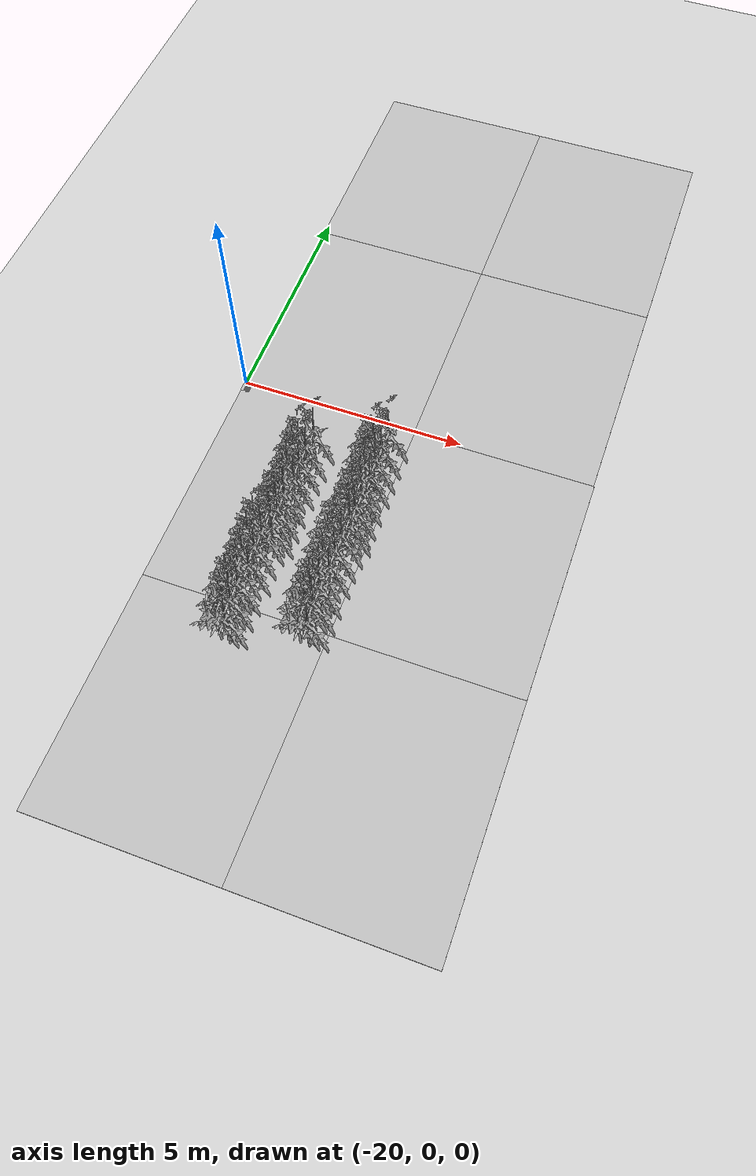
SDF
<sdf version="1.6">
 <world name="default">
  <model name="ground_plane">
   <static>1</static>
   <link name="link">
    <collision name="collision">
     <geometry><plane><normal>0 0 1</normal><size>100 100</size></plane></geometry>
     <surface>
      <contact><collide_bitmask>65535</collide_bitmask></contact>
      <friction><ode><mu>100</mu><mu2>50</mu2></ode></friction>
     </surface>
    </collision>
    <visual name="visual">
     <cast_shadows>0</cast_shadows>
     <geometry><plane><normal>0 0 1</normal><size>100 100</size></plane></geometry>
     <material>
      <script><uri>file://media/materials/scripts/gazebo.material</uri><name>Gazebo/Grey</name></script>
     </material>
    </visual>
   </link>
  </model>
  <model name="Middle_Plant_1">
   <model name="tomato_plant_big">
    <static>1</static>
    <link name="link">
     <collision name="collision">
      <geometry>
       <mesh><scale>5e-06 5e-06 6e-06</scale><uri>model://tomato_plant_big/meshes/tomato-plant.dae</uri></mesh>
      </geometry>
     </collision>
     <visual name="visual">
      <geometry>
       <mesh><scale>5e-06 5e-06 7e-06</scale><uri>model://tomato_plant_big/meshes/tomato-plant.dae</uri></mesh>
      </geometry>
     </visual>
    </link>
    <pose>0.085326 1.23023 0 0 -0 0</pose>
   </model>
   <model name="tomato_plant_big_0">
    <static>1</static>
    <link name="link">
     <collision name="collision">
      <geometry>
       <mesh><scale>5e-06 5e-06 6e-06</scale><uri>model://tomato_plant_big/meshes/tomato-plant.dae</uri></mesh>
      </geometry>
     </collision>
     <visual name="visual">
      <geometry>
       <mesh><scale>5e-06 5e-06 7e-06</scale><uri>model://tomato_plant_big/meshes/tomato-plant.dae</uri></mesh>
      </geometry>
     </visual>
    </link>
    <pose>-0.133881 0.970183 0 0 -0 0</pose>
   </model>
   <model name="tomato_plant_big_1">
    <static>1</static>
    <link name="link">
     <collision name="collision">
      <geometry>
       <mesh><scale>5e-06 5e-06 6e-06</scale><uri>model://tomato_plant_big/meshes/tomato-plant.dae</uri></mesh>
      </geometry>
     </collision>
     <visual name="visual">
      <geometry>
       <mesh><scale>5e-06 5e-06 7e-06</scale><uri>model://tomato_plant_big/meshes/tomato-plant.dae</uri></mesh>
      </geometry>
     </visual>
    </link>
    <pose>0.091162 0.792381 0 0 -0 0</pose>
   </model>
   <model name="tomato_plant_big_2">
    <static>1</static>
    <link name="link">
     <collision name="collision">
      <geometry>
       <mesh><scale>5e-06 5e-06 6e-06</scale><uri>model://tomato_plant_big/meshes/tomato-plant.dae</uri></mesh>
      </geometry>
     </collision>
     <visual name="visual">
      <geometry>
       <mesh><scale>5e-06 5e-06 7e-06</scale><uri>model://tomato_plant_big/meshes/tomato-plant.dae</uri></mesh>
      </geometry>
     </visual>
    </link>
    <pose>-0.099228 0.602587 0 0 -0 0</pose>
   </model>
   <model name="tomato_plant_big_3">
    <static>1</static>
    <link name="link">
     <collision name="collision">
      <geometry>
       <mesh><scale>5e-06 5e-06 6e-06</scale><uri>model://tomato_plant_big/meshes/tomato-plant.dae</uri></mesh>
      </geometry>
     </collision>
     <visual name="visual">
      <geometry>
       <mesh><scale>5e-06 5e-06 7e-06</scale><uri>model://tomato_plant_big/meshes/tomato-plant.dae</uri></mesh>
      </geometry>
     </visual>
    </link>
    <pose>0.083199 0.447645 0 0 -0 0</pose>
   </model>
   <model name="tomato_plant_big_4">
    <static>1</static>
    <link name="link">
     <collision name="collision">
      <geometry>
       <mesh><scale>5e-06 5e-06 6e-06</scale><uri>model://tomato_plant_big/meshes/tomato-plant.dae</uri></mesh>
      </geometry>
     </collision>
     <visual name="visual">
      <geometry>
       <mesh><scale>5e-06 5e-06 7e-06</scale><uri>model://tomato_plant_big/meshes/tomato-plant.dae</uri></mesh>
      </geometry>
     </visual>
    </link>
    <pose>-0.079499 0.263486 0 0 -0 0</pose>
   </model>
   <model name="tomato_plant_big_5">
    <static>1</static>
    <link name="link">
     <collision name="collision">
      <geometry>
       <mesh><scale>5e-06 5e-06 6e-06</scale><uri>model://tomato_plant_big/meshes/tomato-plant.dae</uri></mesh>
      </geometry>
     </collision>
     <visual name="visual">
      <geometry>
       <mesh><scale>5e-06 5e-06 7e-06</scale><uri>model://tomato_plant_big/meshes/tomato-plant.dae</uri></mesh>
      </geometry>
     </visual>
    </link>
    <pose>-0.033274 -0.040578 0 0 -0 0</pose>
   </model>
   <model name="tomato_plant_big_6">
    <static>1</static>
    <link name="link">
     <collision name="collision">
      <geometry>
       <mesh><scale>5e-06 5e-06 6e-06</scale><uri>model://tomato_plant_big/meshes/tomato-plant.dae</uri></mesh>
      </geometry>
     </collision>
     <visual name="visual">
      <geometry>
       <mesh><scale>5e-06 5e-06 7e-06</scale><uri>model://tomato_plant_big/meshes/tomato-plant.dae</uri></mesh>
      </geometry>
     </visual>
    </link>
    <pose>-0.07669 -0.382406 0 0 -0 0</pose>
   </model>
   <model name="tomato_plant_big_7">
    <static>1</static>
    <link name="link">
     <collision name="collision">
      <geometry>
       <mesh><scale>5e-06 5e-06 6e-06</scale><uri>model://tomato_plant_big/meshes/tomato-plant.dae</uri></mesh>
      </geometry>
     </collision>
     <visual name="visual">
      <geometry>
       <mesh><scale>5e-06 5e-06 7e-06</scale><uri>model://tomato_plant_big/meshes/tomato-plant.dae</uri></mesh>
      </geometry>
     </visual>
    </link>
    <pose>0.092388 -0.348189 0 0 -0 0</pose>
   </model>
   <model name="tomato_plant_big_8">
    <static>1</static>
    <link name="link">
     <collision name="collision">
      <geometry>
       <mesh><scale>5e-06 5e-06 6e-06</scale><uri>model://tomato_plant_big/meshes/tomato-plant.dae</uri></mesh>
      </geometry>
     </collision>
     <visual name="visual">
      <geometry>
       <mesh><scale>5e-06 5e-06 7e-06</scale><uri>model://tomato_plant_big/meshes/tomato-plant.dae</uri></mesh>
      </geometry>
     </visual>
    </link>
    <pose>0.099522 -0.697525 0 0 -0 0</pose>
   </model>
   <model name="tomato_plant_big_9">
    <static>1</static>
    <link name="link">
     <collision name="collision">
      <geometry>
       <mesh><scale>5e-06 5e-06 6e-06</scale><uri>model://tomato_plant_big/meshes/tomato-plant.dae</uri></mesh>
      </geometry>
     </collision>
     <visual name="visual">
      <geometry>
       <mesh><scale>5e-06 5e-06 7e-06</scale><uri>model://tomato_plant_big/meshes/tomato-plant.dae</uri></mesh>
      </geometry>
     </visual>
    </link>
    <pose>-0.050449 -0.712772 0 0 -0 0</pose>
   </model>
   <model name="tomato_plant_medium">
    <static>1</static>
    <link name="link">
     <collision name="collision">
      <geometry>
       <mesh><scale>5e-06 5e-06 6e-06</scale><uri>model://tomato_plant_medium/meshes/tomato-plant.dae</uri></mesh>
      </geometry>
     </collision>
     <visual name="visual">
      <geometry>
       <mesh><scale>5e-06 5e-06 6e-06</scale><uri>model://tomato_plant_medium/meshes/tomato-plant.dae</uri></mesh>
      </geometry>
     </visual>
    </link>
    <pose>0.078434 0.139842 0 0 -0 0</pose>
   </model>
   <model name="tomato_plant_medium_0">
    <static>1</static>
    <link name="link">
     <collision name="collision">
      <geometry>
       <mesh><scale>5e-06 5e-06 6e-06</scale><uri>model://tomato_plant_medium/meshes/tomato-plant.dae</uri></mesh>
      </geometry>
     </collision>
     <visual name="visual">
      <geometry>
       <mesh><scale>5e-06 5e-06 6e-06</scale><uri>model://tomato_plant_medium/meshes/tomato-plant.dae</uri></mesh>
      </geometry>
     </visual>
    </link>
    <pose>-0.079755 -0.244483 0 0 -0 0</pose>
   </model>
   <model name="tomato_plant_medium_1">
    <static>1</static>
    <link name="link">
     <collision name="collision">
      <geometry>
       <mesh><scale>5e-06 5e-06 6e-06</scale><uri>model://tomato_plant_medium/meshes/tomato-plant.dae</uri></mesh>
      </geometry>
     </collision>
     <visual name="visual">
      <geometry>
       <mesh><scale>5e-06 5e-06 6e-06</scale><uri>model://tomato_plant_medium/meshes/tomato-plant.dae</uri></mesh>
      </geometry>
     </visual>
    </link>
    <pose>0.106744 -1.01815 0 0 -0 0</pose>
   </model>
   <model name="tomato_plant_small">
    <static>1</static>
    <link name="link">
     <collision name="collision">
      <geometry>
       <mesh><scale>5e-06 5e-06 5e-06</scale><uri>model://tomato_plant_small/meshes/tomato-plant.dae</uri></mesh>
      </geometry>
     </collision>
     <visual name="visual">
      <geometry>
       <mesh><scale>5e-06 5e-06 5e-06</scale><uri>model://tomato_plant_small/meshes/tomato-plant.dae</uri></mesh>
      </geometry>
     </visual>
    </link>
    <pose>-0.083979 -1.00222 0 0 -0 0</pose>
   </model>
   <static>0</static>
   <pose>-17.8578 -4.83213 0 0 -0 0</pose>
  </model>
  <model name="Middle_Plant_2">
   <model name="tomato_plant_big">
    <static>1</static>
    <link name="link">
     <collision name="collision">
      <geometry>
       <mesh><scale>5e-06 5e-06 6e-06</scale><uri>model://tomato_plant_big/meshes/tomato-plant.dae</uri></mesh>
      </geometry>
     </collision>
     <visual name="visual">
      <geometry>
       <mesh><scale>5e-06 5e-06 7e-06</scale><uri>model://tomato_plant_big/meshes/tomato-plant.dae</uri></mesh>
      </geometry>
     </visual>
    </link>
    <pose>0.085326 1.23023 0 0 -0 0</pose>
   </model>
   <model name="tomato_plant_big_0">
    <static>1</static>
    <link name="link">
     <collision name="collision">
      <geometry>
       <mesh><scale>5e-06 5e-06 6e-06</scale><uri>model://tomato_plant_big/meshes/tomato-plant.dae</uri></mesh>
      </geometry>
     </collision>
     <visual name="visual">
      <geometry>
       <mesh><scale>5e-06 5e-06 7e-06</scale><uri>model://tomato_plant_big/meshes/tomato-plant.dae</uri></mesh>
      </geometry>
     </visual>
    </link>
    <pose>-0.133881 0.970183 0 0 -0 0</pose>
   </model>
   <model name="tomato_plant_big_1">
    <static>1</static>
    <link name="link">
     <collision name="collision">
      <geometry>
       <mesh><scale>5e-06 5e-06 6e-06</scale><uri>model://tomato_plant_big/meshes/tomato-plant.dae</uri></mesh>
      </geometry>
     </collision>
     <visual name="visual">
      <geometry>
       <mesh><scale>5e-06 5e-06 7e-06</scale><uri>model://tomato_plant_big/meshes/tomato-plant.dae</uri></mesh>
      </geometry>
     </visual>
    </link>
    <pose>0.091162 0.792381 0 0 -0 0</pose>
   </model>
   <model name="tomato_plant_big_2">
    <static>1</static>
    <link name="link">
     <collision name="collision">
      <geometry>
       <mesh><scale>5e-06 5e-06 6e-06</scale><uri>model://tomato_plant_big/meshes/tomato-plant.dae</uri></mesh>
      </geometry>
     </collision>
     <visual name="visual">
      <geometry>
       <mesh><scale>5e-06 5e-06 7e-06</scale><uri>model://tomato_plant_big/meshes/tomato-plant.dae</uri></mesh>
      </geometry>
     </visual>
    </link>
    <pose>-0.099228 0.602587 0 0 -0 0</pose>
   </model>
   <model name="tomato_plant_big_3">
    <static>1</static>
    <link name="link">
     <collision name="collision">
      <geometry>
       <mesh><scale>5e-06 5e-06 6e-06</scale><uri>model://tomato_plant_big/meshes/tomato-plant.dae</uri></mesh>
      </geometry>
     </collision>
     <visual name="visual">
      <geometry>
       <mesh><scale>5e-06 5e-06 7e-06</scale><uri>model://tomato_plant_big/meshes/tomato-plant.dae</uri></mesh>
      </geometry>
     </visual>
    </link>
    <pose>0.083199 0.447645 0 0 -0 0</pose>
   </model>
   <model name="tomato_plant_big_4">
    <static>1</static>
    <link name="link">
     <collision name="collision">
      <geometry>
       <mesh><scale>5e-06 5e-06 6e-06</scale><uri>model://tomato_plant_big/meshes/tomato-plant.dae</uri></mesh>
      </geometry>
     </collision>
     <visual name="visual">
      <geometry>
       <mesh><scale>5e-06 5e-06 7e-06</scale><uri>model://tomato_plant_big/meshes/tomato-plant.dae</uri></mesh>
      </geometry>
     </visual>
    </link>
    <pose>-0.079499 0.263486 0 0 -0 0</pose>
   </model>
   <model name="tomato_plant_big_5">
    <static>1</static>
    <link name="link">
     <collision name="collision">
      <geometry>
       <mesh><scale>5e-06 5e-06 6e-06</scale><uri>model://tomato_plant_big/meshes/tomato-plant.dae</uri></mesh>
      </geometry>
     </collision>
     <visual name="visual">
      <geometry>
       <mesh><scale>5e-06 5e-06 7e-06</scale><uri>model://tomato_plant_big/meshes/tomato-plant.dae</uri></mesh>
      </geometry>
     </visual>
    </link>
    <pose>-0.033274 -0.040578 0 0 -0 0</pose>
   </model>
   <model name="tomato_plant_big_6">
    <static>1</static>
    <link name="link">
     <collision name="collision">
      <geometry>
       <mesh><scale>5e-06 5e-06 6e-06</scale><uri>model://tomato_plant_big/meshes/tomato-plant.dae</uri></mesh>
      </geometry>
     </collision>
     <visual name="visual">
      <geometry>
       <mesh><scale>5e-06 5e-06 7e-06</scale><uri>model://tomato_plant_big/meshes/tomato-plant.dae</uri></mesh>
      </geometry>
     </visual>
    </link>
    <pose>-0.07669 -0.382406 0 0 -0 0</pose>
   </model>
   <model name="tomato_plant_big_7">
    <static>1</static>
    <link name="link">
     <collision name="collision">
      <geometry>
       <mesh><scale>5e-06 5e-06 6e-06</scale><uri>model://tomato_plant_big/meshes/tomato-plant.dae</uri></mesh>
      </geometry>
     </collision>
     <visual name="visual">
      <geometry>
       <mesh><scale>5e-06 5e-06 7e-06</scale><uri>model://tomato_plant_big/meshes/tomato-plant.dae</uri></mesh>
      </geometry>
     </visual>
    </link>
    <pose>0.092388 -0.348189 0 0 -0 0</pose>
   </model>
   <model name="tomato_plant_big_8">
    <static>1</static>
    <link name="link">
     <collision name="collision">
      <geometry>
       <mesh><scale>5e-06 5e-06 6e-06</scale><uri>model://tomato_plant_big/meshes/tomato-plant.dae</uri></mesh>
      </geometry>
     </collision>
     <visual name="visual">
      <geometry>
       <mesh><scale>5e-06 5e-06 7e-06</scale><uri>model://tomato_plant_big/meshes/tomato-plant.dae</uri></mesh>
      </geometry>
     </visual>
    </link>
    <pose>0.099522 -0.697525 0 0 -0 0</pose>
   </model>
   <model name="tomato_plant_big_9">
    <static>1</static>
    <link name="link">
     <collision name="collision">
      <geometry>
       <mesh><scale>5e-06 5e-06 6e-06</scale><uri>model://tomato_plant_big/meshes/tomato-plant.dae</uri></mesh>
      </geometry>
     </collision>
     <visual name="visual">
      <geometry>
       <mesh><scale>5e-06 5e-06 7e-06</scale><uri>model://tomato_plant_big/meshes/tomato-plant.dae</uri></mesh>
      </geometry>
     </visual>
    </link>
    <pose>-0.050449 -0.712772 0 0 -0 0</pose>
   </model>
   <model name="tomato_plant_medium">
    <static>1</static>
    <link name="link">
     <collision name="collision">
      <geometry>
       <mesh><scale>5e-06 5e-06 6e-06</scale><uri>model://tomato_plant_medium/meshes/tomato-plant.dae</uri></mesh>
      </geometry>
     </collision>
     <visual name="visual">
      <geometry>
       <mesh><scale>5e-06 5e-06 6e-06</scale><uri>model://tomato_plant_medium/meshes/tomato-plant.dae</uri></mesh>
      </geometry>
     </visual>
    </link>
    <pose>0.078434 0.139842 0 0 -0 0</pose>
   </model>
   <model name="tomato_plant_medium_0">
    <static>1</static>
    <link name="link">
     <collision name="collision">
      <geometry>
       <mesh><scale>5e-06 5e-06 6e-06</scale><uri>model://tomato_plant_medium/meshes/tomato-plant.dae</uri></mesh>
      </geometry>
     </collision>
     <visual name="visual">
      <geometry>
       <mesh><scale>5e-06 5e-06 6e-06</scale><uri>model://tomato_plant_medium/meshes/tomato-plant.dae</uri></mesh>
      </geometry>
     </visual>
    </link>
    <pose>-0.079755 -0.244483 0 0 -0 0</pose>
   </model>
   <model name="tomato_plant_medium_1">
    <static>1</static>
    <link name="link">
     <collision name="collision">
      <geometry>
       <mesh><scale>5e-06 5e-06 6e-06</scale><uri>model://tomato_plant_medium/meshes/tomato-plant.dae</uri></mesh>
      </geometry>
     </collision>
     <visual name="visual">
      <geometry>
       <mesh><scale>5e-06 5e-06 6e-06</scale><uri>model://tomato_plant_medium/meshes/tomato-plant.dae</uri></mesh>
      </geometry>
     </visual>
    </link>
    <pose>0.106744 -1.01815 0 0 -0 0</pose>
   </model>
   <model name="tomato_plant_small">
    <static>1</static>
    <link name="link">
     <collision name="collision">
      <geometry>
       <mesh><scale>5e-06 5e-06 5e-06</scale><uri>model://tomato_plant_small/meshes/tomato-plant.dae</uri></mesh>
      </geometry>
     </collision>
     <visual name="visual">
      <geometry>
       <mesh><scale>5e-06 5e-06 5e-06</scale><uri>model://tomato_plant_small/meshes/tomato-plant.dae</uri></mesh>
      </geometry>
     </visual>
    </link>
    <pose>-0.083979 -1.00222 0 0 -0 0</pose>
   </model>
   <static>0</static>
   <pose>-17.7846 -2.78008 0 0 -0 0</pose>
  </model>
  <model name="Middle_Plant_14">
   <model name="tomato_plant_big">
    <static>1</static>
    <link name="link">
     <collision name="collision">
      <geometry>
       <mesh><scale>5e-06 5e-06 6e-06</scale><uri>model://tomato_plant_big/meshes/tomato-plant.dae</uri></mesh>
      </geometry>
     </collision>
     <visual name="visual">
      <geometry>
       <mesh><scale>5e-06 5e-06 7e-06</scale><uri>model://tomato_plant_big/meshes/tomato-plant.dae</uri></mesh>
      </geometry>
     </visual>
    </link>
    <pose>0.085326 1.23023 0 0 -0 0</pose>
   </model>
   <model name="tomato_plant_big_0">
    <static>1</static>
    <link name="link">
     <collision name="collision">
      <geometry>
       <mesh><scale>5e-06 5e-06 6e-06</scale><uri>model://tomato_plant_big/meshes/tomato-plant.dae</uri></mesh>
      </geometry>
     </collision>
     <visual name="visual">
      <geometry>
       <mesh><scale>5e-06 5e-06 7e-06</scale><uri>model://tomato_plant_big/meshes/tomato-plant.dae</uri></mesh>
      </geometry>
     </visual>
    </link>
    <pose>-0.133881 0.970183 0 0 -0 0</pose>
   </model>
   <model name="tomato_plant_big_1">
    <static>1</static>
    <link name="link">
     <collision name="collision">
      <geometry>
       <mesh><scale>5e-06 5e-06 6e-06</scale><uri>model://tomato_plant_big/meshes/tomato-plant.dae</uri></mesh>
      </geometry>
     </collision>
     <visual name="visual">
      <geometry>
       <mesh><scale>5e-06 5e-06 7e-06</scale><uri>model://tomato_plant_big/meshes/tomato-plant.dae</uri></mesh>
      </geometry>
     </visual>
    </link>
    <pose>0.091162 0.792381 0 0 -0 0</pose>
   </model>
   <model name="tomato_plant_big_2">
    <static>1</static>
    <link name="link">
     <collision name="collision">
      <geometry>
       <mesh><scale>5e-06 5e-06 6e-06</scale><uri>model://tomato_plant_big/meshes/tomato-plant.dae</uri></mesh>
      </geometry>
     </collision>
     <visual name="visual">
      <geometry>
       <mesh><scale>5e-06 5e-06 7e-06</scale><uri>model://tomato_plant_big/meshes/tomato-plant.dae</uri></mesh>
      </geometry>
     </visual>
    </link>
    <pose>-0.099228 0.602587 0 0 -0 0</pose>
   </model>
   <model name="tomato_plant_big_3">
    <static>1</static>
    <link name="link">
     <collision name="collision">
      <geometry>
       <mesh><scale>5e-06 5e-06 6e-06</scale><uri>model://tomato_plant_big/meshes/tomato-plant.dae</uri></mesh>
      </geometry>
     </collision>
     <visual name="visual">
      <geometry>
       <mesh><scale>5e-06 5e-06 7e-06</scale><uri>model://tomato_plant_big/meshes/tomato-plant.dae</uri></mesh>
      </geometry>
     </visual>
    </link>
    <pose>0.083199 0.447645 0 0 -0 0</pose>
   </model>
   <model name="tomato_plant_big_4">
    <static>1</static>
    <link name="link">
     <collision name="collision">
      <geometry>
       <mesh><scale>5e-06 5e-06 6e-06</scale><uri>model://tomato_plant_big/meshes/tomato-plant.dae</uri></mesh>
      </geometry>
     </collision>
     <visual name="visual">
      <geometry>
       <mesh><scale>5e-06 5e-06 7e-06</scale><uri>model://tomato_plant_big/meshes/tomato-plant.dae</uri></mesh>
      </geometry>
     </visual>
    </link>
    <pose>-0.079499 0.263486 0 0 -0 0</pose>
   </model>
   <model name="tomato_plant_big_5">
    <static>1</static>
    <link name="link">
     <collision name="collision">
      <geometry>
       <mesh><scale>5e-06 5e-06 6e-06</scale><uri>model://tomato_plant_big/meshes/tomato-plant.dae</uri></mesh>
      </geometry>
     </collision>
     <visual name="visual">
      <geometry>
       <mesh><scale>5e-06 5e-06 7e-06</scale><uri>model://tomato_plant_big/meshes/tomato-plant.dae</uri></mesh>
      </geometry>
     </visual>
    </link>
    <pose>-0.033274 -0.040578 0 0 -0 0</pose>
   </model>
   <model name="tomato_plant_big_6">
    <static>1</static>
    <link name="link">
     <collision name="collision">
      <geometry>
       <mesh><scale>5e-06 5e-06 6e-06</scale><uri>model://tomato_plant_big/meshes/tomato-plant.dae</uri></mesh>
      </geometry>
     </collision>
     <visual name="visual">
      <geometry>
       <mesh><scale>5e-06 5e-06 7e-06</scale><uri>model://tomato_plant_big/meshes/tomato-plant.dae</uri></mesh>
      </geometry>
     </visual>
    </link>
    <pose>-0.07669 -0.382406 0 0 -0 0</pose>
   </model>
   <model name="tomato_plant_big_7">
    <static>1</static>
    <link name="link">
     <collision name="collision">
      <geometry>
       <mesh><scale>5e-06 5e-06 6e-06</scale><uri>model://tomato_plant_big/meshes/tomato-plant.dae</uri></mesh>
      </geometry>
     </collision>
     <visual name="visual">
      <geometry>
       <mesh><scale>5e-06 5e-06 7e-06</scale><uri>model://tomato_plant_big/meshes/tomato-plant.dae</uri></mesh>
      </geometry>
     </visual>
    </link>
    <pose>0.092388 -0.348189 0 0 -0 0</pose>
   </model>
   <model name="tomato_plant_big_8">
    <static>1</static>
    <link name="link">
     <collision name="collision">
      <geometry>
       <mesh><scale>5e-06 5e-06 6e-06</scale><uri>model://tomato_plant_big/meshes/tomato-plant.dae</uri></mesh>
      </geometry>
     </collision>
     <visual name="visual">
      <geometry>
       <mesh><scale>5e-06 5e-06 7e-06</scale><uri>model://tomato_plant_big/meshes/tomato-plant.dae</uri></mesh>
      </geometry>
     </visual>
    </link>
    <pose>0.099522 -0.697525 0 0 -0 0</pose>
   </model>
   <model name="tomato_plant_big_9">
    <static>1</static>
    <link name="link">
     <collision name="collision">
      <geometry>
       <mesh><scale>5e-06 5e-06 6e-06</scale><uri>model://tomato_plant_big/meshes/tomato-plant.dae</uri></mesh>
      </geometry>
     </collision>
     <visual name="visual">
      <geometry>
       <mesh><scale>5e-06 5e-06 7e-06</scale><uri>model://tomato_plant_big/meshes/tomato-plant.dae</uri></mesh>
      </geometry>
     </visual>
    </link>
    <pose>-0.050449 -0.712772 0 0 -0 0</pose>
   </model>
   <model name="tomato_plant_medium">
    <static>1</static>
    <link name="link">
     <collision name="collision">
      <geometry>
       <mesh><scale>5e-06 5e-06 6e-06</scale><uri>model://tomato_plant_medium/meshes/tomato-plant.dae</uri></mesh>
      </geometry>
     </collision>
     <visual name="visual">
      <geometry>
       <mesh><scale>5e-06 5e-06 6e-06</scale><uri>model://tomato_plant_medium/meshes/tomato-plant.dae</uri></mesh>
      </geometry>
     </visual>
    </link>
    <pose>0.078434 0.139842 0 0 -0 0</pose>
   </model>
   <model name="tomato_plant_medium_0">
    <static>1</static>
    <link name="link">
     <collision name="collision">
      <geometry>
       <mesh><scale>5e-06 5e-06 6e-06</scale><uri>model://tomato_plant_medium/meshes/tomato-plant.dae</uri></mesh>
      </geometry>
     </collision>
     <visual name="visual">
      <geometry>
       <mesh><scale>5e-06 5e-06 6e-06</scale><uri>model://tomato_plant_medium/meshes/tomato-plant.dae</uri></mesh>
      </geometry>
     </visual>
    </link>
    <pose>-0.079755 -0.244483 0 0 -0 0</pose>
   </model>
   <model name="tomato_plant_medium_1">
    <static>1</static>
    <link name="link">
     <collision name="collision">
      <geometry>
       <mesh><scale>5e-06 5e-06 6e-06</scale><uri>model://tomato_plant_medium/meshes/tomato-plant.dae</uri></mesh>
      </geometry>
     </collision>
     <visual name="visual">
      <geometry>
       <mesh><scale>5e-06 5e-06 6e-06</scale><uri>model://tomato_plant_medium/meshes/tomato-plant.dae</uri></mesh>
      </geometry>
     </visual>
    </link>
    <pose>0.106744 -1.01815 0 0 -0 0</pose>
   </model>
   <model name="tomato_plant_small">
    <static>1</static>
    <link name="link">
     <collision name="collision">
      <geometry>
       <mesh><scale>5e-06 5e-06 5e-06</scale><uri>model://tomato_plant_small/meshes/tomato-plant.dae</uri></mesh>
      </geometry>
     </collision>
     <visual name="visual">
      <geometry>
       <mesh><scale>5e-06 5e-06 5e-06</scale><uri>model://tomato_plant_small/meshes/tomato-plant.dae</uri></mesh>
      </geometry>
     </visual>
    </link>
    <pose>-0.083979 -1.00222 0 0 -0 0</pose>
   </model>
   <static>0</static>
   <pose>-16.3902 -4.38628 0 0 -0 0</pose>
  </model>
  <model name="Middle_Plant_19">
   <model name="tomato_plant_big">
    <static>1</static>
    <link name="link">
     <collision name="collision">
      <geometry>
       <mesh><scale>5e-06 5e-06 6e-06</scale><uri>model://tomato_plant_big/meshes/tomato-plant.dae</uri></mesh>
      </geometry>
     </collision>
     <visual name="visual">
      <geometry>
       <mesh><scale>5e-06 5e-06 7e-06</scale><uri>model://tomato_plant_big/meshes/tomato-plant.dae</uri></mesh>
      </geometry>
     </visual>
    </link>
    <pose>0.085326 1.23023 0 0 -0 0</pose>
   </model>
   <model name="tomato_plant_big_0">
    <static>1</static>
    <link name="link">
     <collision name="collision">
      <geometry>
       <mesh><scale>5e-06 5e-06 6e-06</scale><uri>model://tomato_plant_big/meshes/tomato-plant.dae</uri></mesh>
      </geometry>
     </collision>
     <visual name="visual">
      <geometry>
       <mesh><scale>5e-06 5e-06 7e-06</scale><uri>model://tomato_plant_big/meshes/tomato-plant.dae</uri></mesh>
      </geometry>
     </visual>
    </link>
    <pose>-0.133881 0.970183 0 0 -0 0</pose>
   </model>
   <model name="tomato_plant_big_1">
    <static>1</static>
    <link name="link">
     <collision name="collision">
      <geometry>
       <mesh><scale>5e-06 5e-06 6e-06</scale><uri>model://tomato_plant_big/meshes/tomato-plant.dae</uri></mesh>
      </geometry>
     </collision>
     <visual name="visual">
      <geometry>
       <mesh><scale>5e-06 5e-06 7e-06</scale><uri>model://tomato_plant_big/meshes/tomato-plant.dae</uri></mesh>
      </geometry>
     </visual>
    </link>
    <pose>0.091162 0.792381 0 0 -0 0</pose>
   </model>
   <model name="tomato_plant_big_2">
    <static>1</static>
    <link name="link">
     <collision name="collision">
      <geometry>
       <mesh><scale>5e-06 5e-06 6e-06</scale><uri>model://tomato_plant_big/meshes/tomato-plant.dae</uri></mesh>
      </geometry>
     </collision>
     <visual name="visual">
      <geometry>
       <mesh><scale>5e-06 5e-06 7e-06</scale><uri>model://tomato_plant_big/meshes/tomato-plant.dae</uri></mesh>
      </geometry>
     </visual>
    </link>
    <pose>-0.099228 0.602587 0 0 -0 0</pose>
   </model>
   <model name="tomato_plant_big_3">
    <static>1</static>
    <link name="link">
     <collision name="collision">
      <geometry>
       <mesh><scale>5e-06 5e-06 6e-06</scale><uri>model://tomato_plant_big/meshes/tomato-plant.dae</uri></mesh>
      </geometry>
     </collision>
     <visual name="visual">
      <geometry>
       <mesh><scale>5e-06 5e-06 7e-06</scale><uri>model://tomato_plant_big/meshes/tomato-plant.dae</uri></mesh>
      </geometry>
     </visual>
    </link>
    <pose>0.083199 0.447645 0 0 -0 0</pose>
   </model>
   <model name="tomato_plant_big_4">
    <static>1</static>
    <link name="link">
     <collision name="collision">
      <geometry>
       <mesh><scale>5e-06 5e-06 6e-06</scale><uri>model://tomato_plant_big/meshes/tomato-plant.dae</uri></mesh>
      </geometry>
     </collision>
     <visual name="visual">
      <geometry>
       <mesh><scale>5e-06 5e-06 7e-06</scale><uri>model://tomato_plant_big/meshes/tomato-plant.dae</uri></mesh>
      </geometry>
     </visual>
    </link>
    <pose>-0.079499 0.263486 0 0 -0 0</pose>
   </model>
   <model name="tomato_plant_big_5">
    <static>1</static>
    <link name="link">
     <collision name="collision">
      <geometry>
       <mesh><scale>5e-06 5e-06 6e-06</scale><uri>model://tomato_plant_big/meshes/tomato-plant.dae</uri></mesh>
      </geometry>
     </collision>
     <visual name="visual">
      <geometry>
       <mesh><scale>5e-06 5e-06 7e-06</scale><uri>model://tomato_plant_big/meshes/tomato-plant.dae</uri></mesh>
      </geometry>
     </visual>
    </link>
    <pose>-0.033274 -0.040578 0 0 -0 0</pose>
   </model>
   <model name="tomato_plant_big_6">
    <static>1</static>
    <link name="link">
     <collision name="collision">
      <geometry>
       <mesh><scale>5e-06 5e-06 6e-06</scale><uri>model://tomato_plant_big/meshes/tomato-plant.dae</uri></mesh>
      </geometry>
     </collision>
     <visual name="visual">
      <geometry>
       <mesh><scale>5e-06 5e-06 7e-06</scale><uri>model://tomato_plant_big/meshes/tomato-plant.dae</uri></mesh>
      </geometry>
     </visual>
    </link>
    <pose>-0.07669 -0.382406 0 0 -0 0</pose>
   </model>
   <model name="tomato_plant_big_7">
    <static>1</static>
    <link name="link">
     <collision name="collision">
      <geometry>
       <mesh><scale>5e-06 5e-06 6e-06</scale><uri>model://tomato_plant_big/meshes/tomato-plant.dae</uri></mesh>
      </geometry>
     </collision>
     <visual name="visual">
      <geometry>
       <mesh><scale>5e-06 5e-06 7e-06</scale><uri>model://tomato_plant_big/meshes/tomato-plant.dae</uri></mesh>
      </geometry>
     </visual>
    </link>
    <pose>0.092388 -0.348189 0 0 -0 0</pose>
   </model>
   <model name="tomato_plant_big_8">
    <static>1</static>
    <link name="link">
     <collision name="collision">
      <geometry>
       <mesh><scale>5e-06 5e-06 6e-06</scale><uri>model://tomato_plant_big/meshes/tomato-plant.dae</uri></mesh>
      </geometry>
     </collision>
     <visual name="visual">
      <geometry>
       <mesh><scale>5e-06 5e-06 7e-06</scale><uri>model://tomato_plant_big/meshes/tomato-plant.dae</uri></mesh>
      </geometry>
     </visual>
    </link>
    <pose>0.099522 -0.697525 0 0 -0 0</pose>
   </model>
   <model name="tomato_plant_big_9">
    <static>1</static>
    <link name="link">
     <collision name="collision">
      <geometry>
       <mesh><scale>5e-06 5e-06 6e-06</scale><uri>model://tomato_plant_big/meshes/tomato-plant.dae</uri></mesh>
      </geometry>
     </collision>
     <visual name="visual">
      <geometry>
       <mesh><scale>5e-06 5e-06 7e-06</scale><uri>model://tomato_plant_big/meshes/tomato-plant.dae</uri></mesh>
      </geometry>
     </visual>
    </link>
    <pose>-0.050449 -0.712772 0 0 -0 0</pose>
   </model>
   <model name="tomato_plant_medium">
    <static>1</static>
    <link name="link">
     <collision name="collision">
      <geometry>
       <mesh><scale>5e-06 5e-06 6e-06</scale><uri>model://tomato_plant_medium/meshes/tomato-plant.dae</uri></mesh>
      </geometry>
     </collision>
     <visual name="visual">
      <geometry>
       <mesh><scale>5e-06 5e-06 6e-06</scale><uri>model://tomato_plant_medium/meshes/tomato-plant.dae</uri></mesh>
      </geometry>
     </visual>
    </link>
    <pose>0.078434 0.139842 0 0 -0 0</pose>
   </model>
   <model name="tomato_plant_medium_0">
    <static>1</static>
    <link name="link">
     <collision name="collision">
      <geometry>
       <mesh><scale>5e-06 5e-06 6e-06</scale><uri>model://tomato_plant_medium/meshes/tomato-plant.dae</uri></mesh>
      </geometry>
     </collision>
     <visual name="visual">
      <geometry>
       <mesh><scale>5e-06 5e-06 6e-06</scale><uri>model://tomato_plant_medium/meshes/tomato-plant.dae</uri></mesh>
      </geometry>
     </visual>
    </link>
    <pose>-0.079755 -0.244483 0 0 -0 0</pose>
   </model>
   <model name="tomato_plant_medium_1">
    <static>1</static>
    <link name="link">
     <collision name="collision">
      <geometry>
       <mesh><scale>5e-06 5e-06 6e-06</scale><uri>model://tomato_plant_medium/meshes/tomato-plant.dae</uri></mesh>
      </geometry>
     </collision>
     <visual name="visual">
      <geometry>
       <mesh><scale>5e-06 5e-06 6e-06</scale><uri>model://tomato_plant_medium/meshes/tomato-plant.dae</uri></mesh>
      </geometry>
     </visual>
    </link>
    <pose>0.106744 -1.01815 0 0 -0 0</pose>
   </model>
   <model name="tomato_plant_small">
    <static>1</static>
    <link name="link">
     <collision name="collision">
      <geometry>
       <mesh><scale>5e-06 5e-06 5e-06</scale><uri>model://tomato_plant_small/meshes/tomato-plant.dae</uri></mesh>
      </geometry>
     </collision>
     <visual name="visual">
      <geometry>
       <mesh><scale>5e-06 5e-06 5e-06</scale><uri>model://tomato_plant_small/meshes/tomato-plant.dae</uri></mesh>
      </geometry>
     </visual>
    </link>
    <pose>-0.083979 -1.00222 0 0 -0 0</pose>
   </model>
   <static>0</static>
   <pose>-16.3722 -2.23599 0 0 -0 0</pose>
  </model>
  <model name="mud_box_4_clone">
   <static>1</static>
   <link name="link">
    <collision name="collision"><geometry><box><size>8 10 0.02</size></box></geometry></collision>
    <visual name="visual_1">
     <pose>-2 2.5 0 0 -0 0</pose>
     <cast_shadows>0</cast_shadows>
     <geometry><box><size>4 5 0.02</size></box></geometry>
     <material>
      <script>
       <uri>model://mud_box/materials/scripts</uri>
       <uri>model://mud_box/materials/textures</uri>
       <name>vrc/mud</name>
      </script>
     </material>
    </visual>
    <visual name="visual_2">
     <pose>2 2.5 0 0 -0 0</pose>
     <cast_shadows>0</cast_shadows>
     <geometry><box><size>4 5 0.02</size></box></geometry>
     <material>
      <script>
       <uri>model://mud_box/materials/scripts</uri>
       <uri>model://mud_box/materials/textures</uri>
       <name>vrc/mud</name>
      </script>
     </material>
    </visual>
    <visual name="visual_3">
     <pose>2 -2.5 0 0 -0 0</pose>
     <cast_shadows>0</cast_shadows>
     <geometry><box><size>4 5 0.02</size></box></geometry>
     <material>
      <script>
       <uri>model://mud_box/materials/scripts</uri>
       <uri>model://mud_box/materials/textures</uri>
       <name>vrc/mud</name>
      </script>
     </material>
    </visual>
    <visual name="visual_4">
     <pose>-2 -2.5 0 0 -0 0</pose>
     <cast_shadows>0</cast_shadows>
     <geometry><box><size>4 5 0.02</size></box></geometry>
     <material>
      <script>
       <uri>model://mud_box/materials/scripts</uri>
       <uri>model://mud_box/materials/textures</uri>
       <name>vrc/mud</name>
      </script>
     </material>
    </visual>
   </link>
   <pose>-16.0278 -5.06387 0 0 -0 0</pose>
  </model>
  <model name="mud_box">
   <static>1</static>
   <link name="link">
    <collision name="collision"><geometry><box><size>8 10 0.02</size></box></geometry></collision>
    <visual name="visual_1">
     <pose>-2 2.5 0 0 -0 0</pose>
     <cast_shadows>0</cast_shadows>
     <geometry><box><size>4 5 0.02</size></box></geometry>
     <material>
      <script>
       <uri>model://mud_box/materials/scripts</uri>
       <uri>model://mud_box/materials/textures</uri>
       <name>vrc/mud</name>
      </script>
     </material>
    </visual>
    <visual name="visual_2">
     <pose>2 2.5 0 0 -0 0</pose>
     <cast_shadows>0</cast_shadows>
     <geometry><box><size>4 5 0.02</size></box></geometry>
     <material>
      <script>
       <uri>model://mud_box/materials/scripts</uri>
       <uri>model://mud_box/materials/textures</uri>
       <name>vrc/mud</name>
      </script>
     </material>
    </visual>
    <visual name="visual_3">
     <pose>2 -2.5 0 0 -0 0</pose>
     <cast_shadows>0</cast_shadows>
     <geometry><box><size>4 5 0.02</size></box></geometry>
     <material>
      <script>
       <uri>model://mud_box/materials/scripts</uri>
       <uri>model://mud_box/materials/textures</uri>
       <name>vrc/mud</name>
      </script>
     </material>
    </visual>
    <visual name="visual_4">
     <pose>-2 -2.5 0 0 -0 0</pose>
     <cast_shadows>0</cast_shadows>
     <geometry><box><size>4 5 0.02</size></box></geometry>
     <material>
      <script>
       <uri>model://mud_box/materials/scripts</uri>
       <uri>model://mud_box/materials/textures</uri>
       <name>vrc/mud</name>
      </script>
     </material>
    </visual>
   </link>
   <pose>-16.0443 4.76987 0 0 -0 0</pose>
  </model>
 </world>
</sdf>
